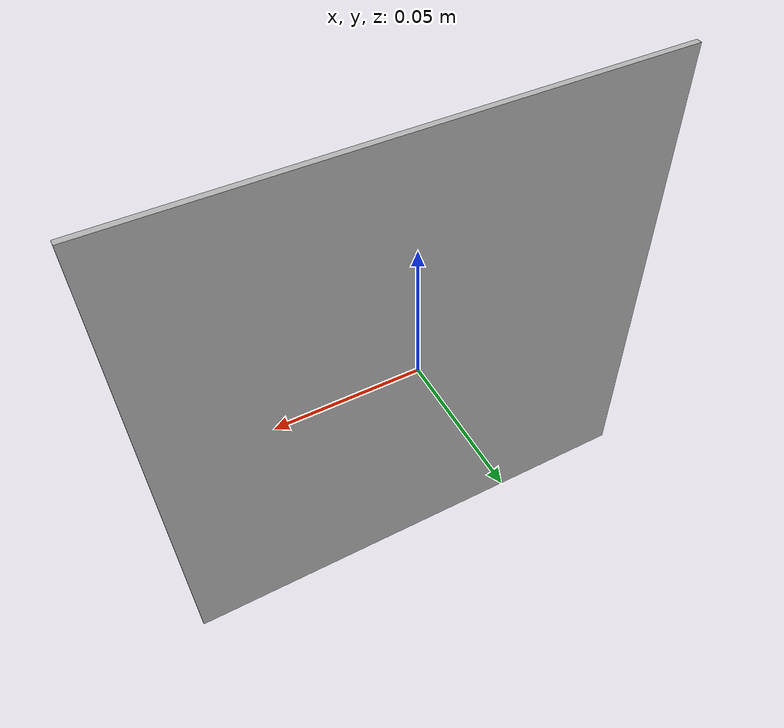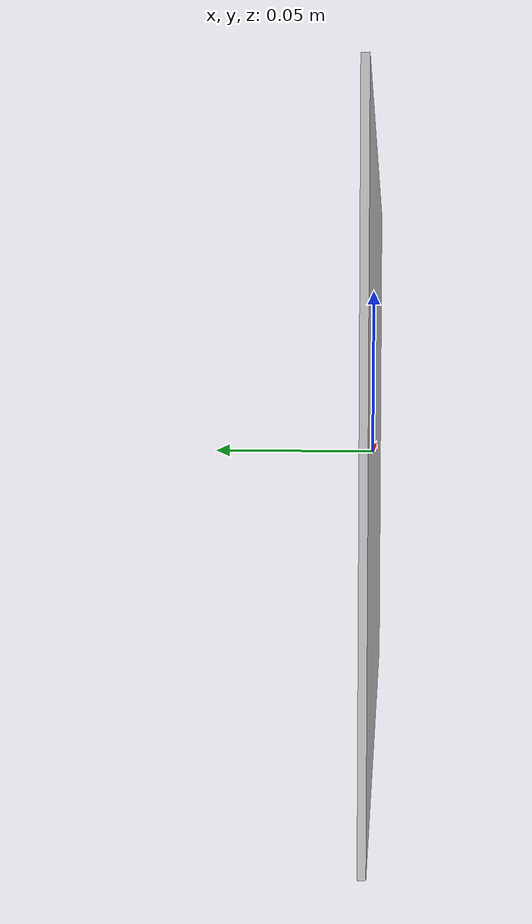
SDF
<?xml version="1.0" ?>
<sdf version="1.6">
  <model name="apriltag_plate_3">
    <static>true</static>

    <link name="tag_link">
      <visual name="tag_visual">
        <geometry>
          <box>
            <size>0.18 0.002 0.18</size>
          </box>
        </geometry>

        <material>
          <script>
            <uri>model://apriltag_plate_3/materials/scripts</uri>
            <uri>model://apriltag_plate_3/materials/textures</uri>
            <name>Apriltag/Tag3</name>
          </script>
        </material>

        <cast_shadows>false</cast_shadows>
      </visual>

      <collision name="tag_collision">
        <geometry>
          <box><size>0.18 0.002 0.18</size></box>
        </geometry>
      </collision>
    </link>
  </model>
</sdf>
